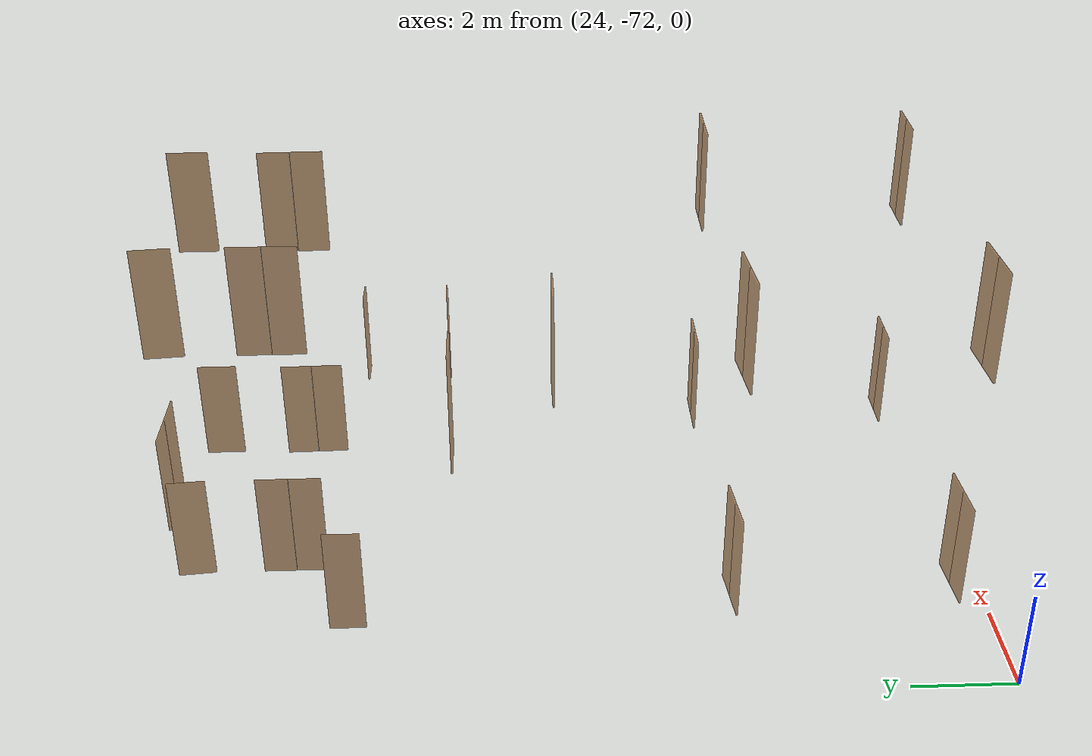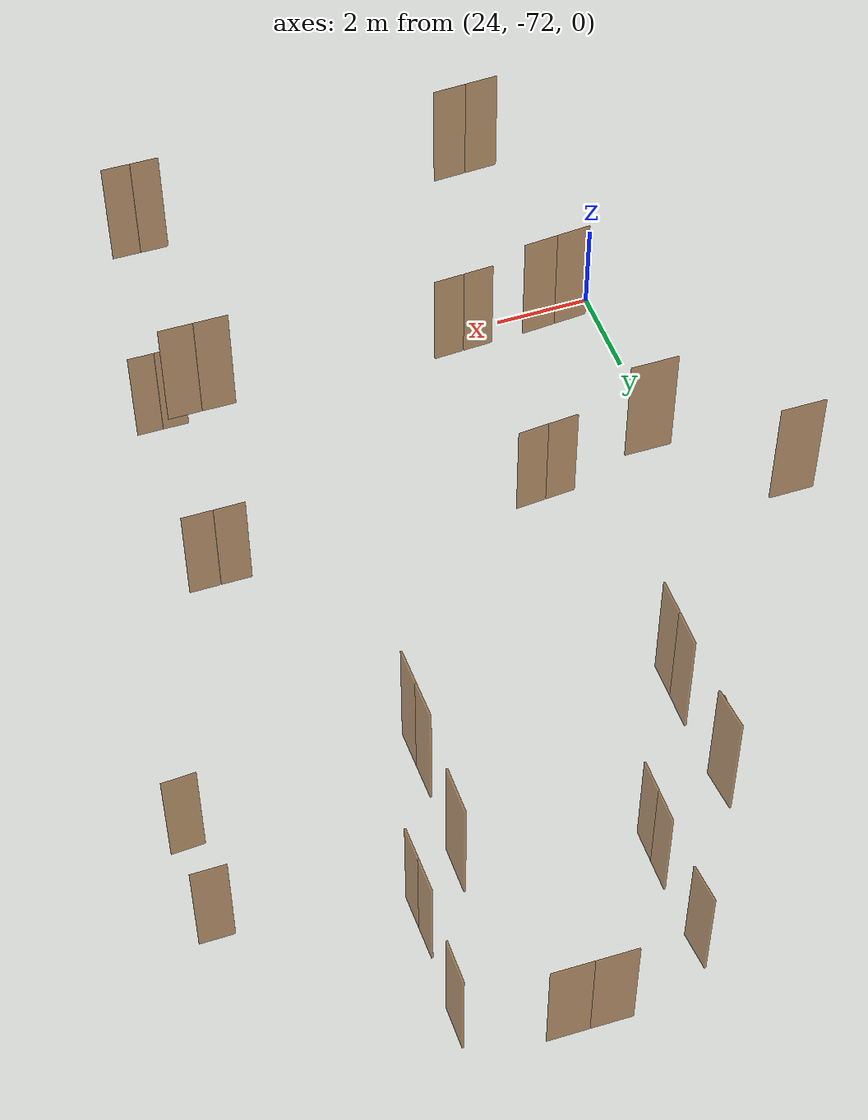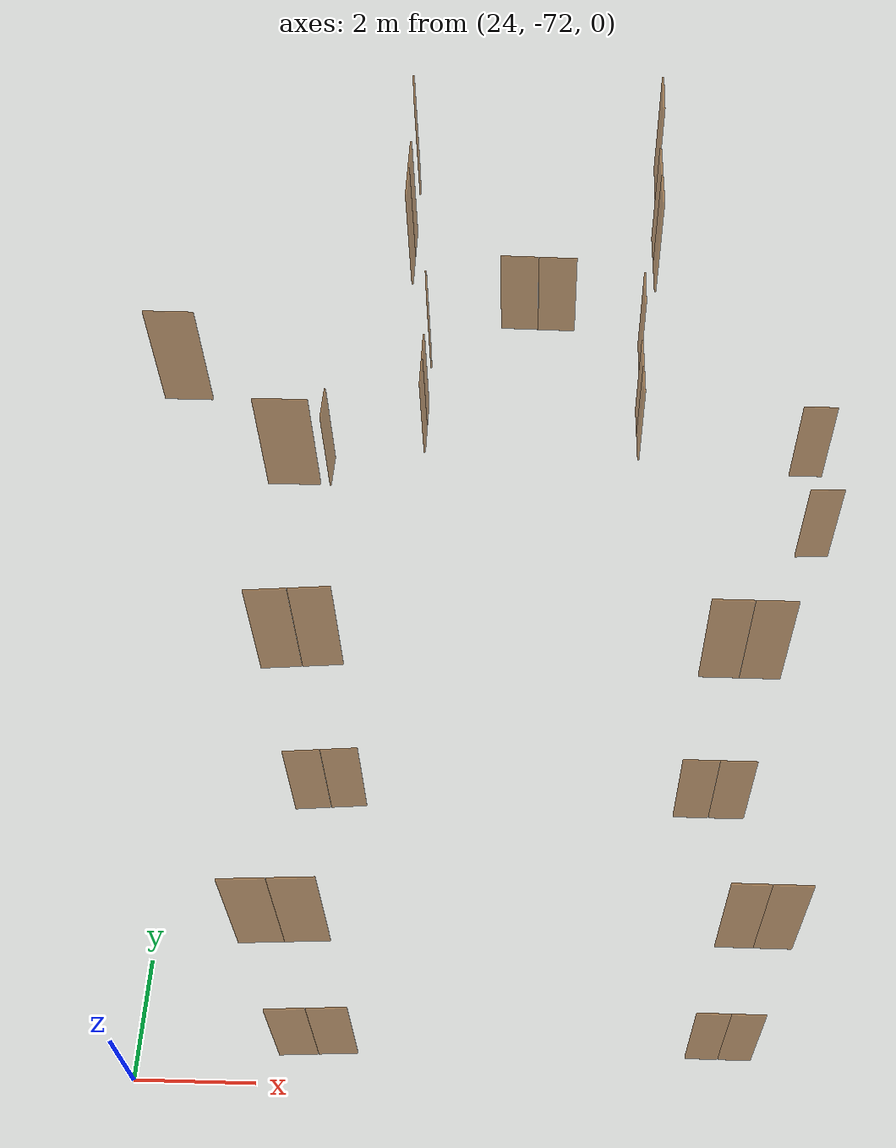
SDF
<sdf version="1.7">
 <world name="sim_world">
  <model name="null1">
   <pose>26.103566161447322 -59.618719863293634 0.0 0 0 1.54049188150451</pose>
   <link name="right">
    <pose>0 0 1.11 0 0 0</pose>
    <visual name="right_visual">
     <geometry><box><size>0.705529690599223 0.03 2.2</size></box></geometry>
     <material>
      <ambient>0.5 0.25 0 0.6</ambient>
      <diffuse>0.5 0.25 0 0.6</diffuse>
      <pbr><metal><metalness>0.0</metalness></metal></pbr>
     </material>
    </visual>
    <collision name="right_collision">
     <geometry><box><size>0.705529690599223 0.03 2.2</size></box></geometry>
     <surface><contact><collide_bitmask>0x02</collide_bitmask></contact></surface>
    </collision>
    <inertial>
     <mass>50.0</mass>
     <inertia><ixx>20.17041666666667</ixx><iyy>22.24071726798765</iyy><izz>2.077800601320981</izz></inertia>
    </inertial>
   </link>
   <joint name="right_joint" type="revolute">
    <parent>world</parent>
    <child>right</child>
    <axis><xyz>0 0 -1</xyz><limit><lower>0</lower><upper>1.57</upper></limit></axis>
    <pose>0.3577648452996115 0 0 0 0 0</pose>
   </joint>
   <plugin name="register_component" filename="libregister_component.so">
    <component name="Door">
     <v_max_door>0.5</v_max_door>
     <a_max_door>0.3</a_max_door>
     <a_nom_door>0.15</a_nom_door>
     <dx_min_door>0.01</dx_min_door>
     <f_max_door>500.0</f_max_door>
     <ros_interface>true</ros_interface>
     <door name="null1" type="SwingDoor" left_joint_name="empty_joint" right_joint_name="right_joint"/>
    </component>
   </plugin>
  </model>
  <model name="null2">
   <pose>27.940020431665385 -58.45546621345521 0.0 0 0 -1.5707963267948966</pose>
   <link name="right">
    <pose>0.3229764292878645 0 1.11 0 0 0</pose>
    <visual name="right_visual">
     <geometry><box><size>0.635952858575729 0.03 2.2</size></box></geometry>
     <material>
      <ambient>0.5 0.25 0 0.6</ambient>
      <diffuse>0.5 0.25 0 0.6</diffuse>
      <pbr><metal><metalness>0.0</metalness></metal></pbr>
     </material>
    </visual>
    <collision name="right_collision">
     <geometry><box><size>0.635952858575729 0.03 2.2</size></box></geometry>
     <surface><contact><collide_bitmask>0x02</collide_bitmask></contact></surface>
    </collision>
    <inertial>
     <mass>50.0</mass>
     <inertia><ixx>20.17041666666667</ixx><iyy>21.85181682637768</iyy><izz>1.6889001597110054</izz></inertia>
    </inertial>
   </link>
   <joint name="right_joint" type="revolute">
    <parent>world</parent>
    <child>right</child>
    <axis><xyz>0 0 -1</xyz><limit><lower>0</lower><upper>1.57</upper></limit></axis>
    <pose>0.3229764292878645 0 0 0 0 0</pose>
   </joint>
   <link name="left">
    <pose>-0.3229764292878645 0 1.11 0 0 0</pose>
    <visual name="left_visual">
     <geometry><box><size>0.635952858575729 0.03 2.2</size></box></geometry>
     <material>
      <ambient>0.5 0.25 0 0.6</ambient>
      <diffuse>0.5 0.25 0 0.6</diffuse>
      <pbr><metal><metalness>0.0</metalness></metal></pbr>
     </material>
    </visual>
    <collision name="left_collision">
     <geometry><box><size>0.635952858575729 0.03 2.2</size></box></geometry>
     <surface><contact><collide_bitmask>0x02</collide_bitmask></contact></surface>
    </collision>
    <inertial>
     <mass>50.0</mass>
     <inertia><ixx>20.17041666666667</ixx><iyy>21.85181682637768</iyy><izz>1.6889001597110054</izz></inertia>
    </inertial>
   </link>
   <joint name="left_joint" type="revolute">
    <parent>world</parent>
    <child>left</child>
    <axis><xyz>0 0 -1</xyz><limit><lower>-1.57</lower><upper>0</upper></limit></axis>
    <pose>-0.3229764292878645 0 0 0 0 0</pose>
   </joint>
   <plugin name="register_component" filename="libregister_component.so">
    <component name="Door">
     <v_max_door>0.5</v_max_door>
     <a_max_door>0.3</a_max_door>
     <a_nom_door>0.15</a_nom_door>
     <dx_min_door>0.01</dx_min_door>
     <f_max_door>500.0</f_max_door>
     <ros_interface>true</ros_interface>
     <door name="null2" type="DoubleSwingDoor" left_joint_name="left_joint" right_joint_name="right_joint"/>
    </component>
   </plugin>
  </model>
  <model name="null3">
   <pose>32.28503575541441 -58.48877214978272 0.0 0 0 1.5974592193470154</pose>
   <link name="right">
    <pose>0.33060354915400486 0 1.11 0 0 0</pose>
    <visual name="right_visual">
     <geometry><box><size>0.6512070983080097 0.03 2.2</size></box></geometry>
     <material>
      <ambient>0.5 0.25 0 0.6</ambient>
      <diffuse>0.5 0.25 0 0.6</diffuse>
      <pbr><metal><metalness>0.0</metalness></metal></pbr>
     </material>
    </visual>
    <collision name="right_collision">
     <geometry><box><size>0.6512070983080097 0.03 2.2</size></box></geometry>
     <surface><contact><collide_bitmask>0x02</collide_bitmask></contact></surface>
    </collision>
    <inertial>
     <mass>50.0</mass>
     <inertia><ixx>20.17041666666667</ixx><iyy>21.933627853694745</iyy><izz>1.7707111870280745</izz></inertia>
    </inertial>
   </link>
   <joint name="right_joint" type="revolute">
    <parent>world</parent>
    <child>right</child>
    <axis><xyz>0 0 -1</xyz><limit><lower>0</lower><upper>1.57</upper></limit></axis>
    <pose>0.33060354915400486 0 0 0 0 0</pose>
   </joint>
   <link name="left">
    <pose>-0.33060354915400486 0 1.11 0 0 0</pose>
    <visual name="left_visual">
     <geometry><box><size>0.6512070983080097 0.03 2.2</size></box></geometry>
     <material>
      <ambient>0.5 0.25 0 0.6</ambient>
      <diffuse>0.5 0.25 0 0.6</diffuse>
      <pbr><metal><metalness>0.0</metalness></metal></pbr>
     </material>
    </visual>
    <collision name="left_collision">
     <geometry><box><size>0.6512070983080097 0.03 2.2</size></box></geometry>
     <surface><contact><collide_bitmask>0x02</collide_bitmask></contact></surface>
    </collision>
    <inertial>
     <mass>50.0</mass>
     <inertia><ixx>20.17041666666667</ixx><iyy>21.933627853694745</iyy><izz>1.7707111870280745</izz></inertia>
    </inertial>
   </link>
   <joint name="left_joint" type="revolute">
    <parent>world</parent>
    <child>left</child>
    <axis><xyz>0 0 -1</xyz><limit><lower>-1.57</lower><upper>0</upper></limit></axis>
    <pose>-0.33060354915400486 0 0 0 0 0</pose>
   </joint>
   <plugin name="register_component" filename="libregister_component.so">
    <component name="Door">
     <v_max_door>0.5</v_max_door>
     <a_max_door>0.3</a_max_door>
     <a_nom_door>0.15</a_nom_door>
     <dx_min_door>0.01</dx_min_door>
     <f_max_door>500.0</f_max_door>
     <ros_interface>true</ros_interface>
     <door name="null3" type="DoubleSwingDoor" left_joint_name="left_joint" right_joint_name="right_joint"/>
    </component>
   </plugin>
  </model>
  <model name="null4">
   <pose>26.764426055945634 -67.0479209851778 0.0 0 0 -3.0586886826109057</pose>
   <link name="right">
    <pose>0.31905180220893986 0 1.11 0 0 0</pose>
    <visual name="right_visual">
     <geometry><box><size>0.6281036044178797 0.03 2.2</size></box></geometry>
     <material>
      <ambient>0.5 0.25 0 0.6</ambient>
      <diffuse>0.5 0.25 0 0.6</diffuse>
      <pbr><metal><metalness>0.0</metalness></metal></pbr>
     </material>
    </visual>
    <collision name="right_collision">
     <geometry><box><size>0.6281036044178797 0.03 2.2</size></box></geometry>
     <surface><contact><collide_bitmask>0x02</collide_bitmask></contact></surface>
    </collision>
    <inertial>
     <mass>50.0</mass>
     <inertia><ixx>20.17041666666667</ixx><iyy>21.810475574511386</iyy><izz>1.6475589078447181</izz></inertia>
    </inertial>
   </link>
   <joint name="right_joint" type="revolute">
    <parent>world</parent>
    <child>right</child>
    <axis><xyz>0 0 -1</xyz><limit><lower>0</lower><upper>1.57</upper></limit></axis>
    <pose>0.31905180220893986 0 0 0 0 0</pose>
   </joint>
   <link name="left">
    <pose>-0.31905180220893986 0 1.11 0 0 0</pose>
    <visual name="left_visual">
     <geometry><box><size>0.6281036044178797 0.03 2.2</size></box></geometry>
     <material>
      <ambient>0.5 0.25 0 0.6</ambient>
      <diffuse>0.5 0.25 0 0.6</diffuse>
      <pbr><metal><metalness>0.0</metalness></metal></pbr>
     </material>
    </visual>
    <collision name="left_collision">
     <geometry><box><size>0.6281036044178797 0.03 2.2</size></box></geometry>
     <surface><contact><collide_bitmask>0x02</collide_bitmask></contact></surface>
    </collision>
    <inertial>
     <mass>50.0</mass>
     <inertia><ixx>20.17041666666667</ixx><iyy>21.810475574511386</iyy><izz>1.6475589078447181</izz></inertia>
    </inertial>
   </link>
   <joint name="left_joint" type="revolute">
    <parent>world</parent>
    <child>left</child>
    <axis><xyz>0 0 -1</xyz><limit><lower>-1.57</lower><upper>0</upper></limit></axis>
    <pose>-0.31905180220893986 0 0 0 0 0</pose>
   </joint>
   <plugin name="register_component" filename="libregister_component.so">
    <component name="Door">
     <v_max_door>0.5</v_max_door>
     <a_max_door>0.3</a_max_door>
     <a_nom_door>0.15</a_nom_door>
     <dx_min_door>0.01</dx_min_door>
     <f_max_door>500.0</f_max_door>
     <ros_interface>true</ros_interface>
     <door name="null4" type="DoubleSwingDoor" left_joint_name="left_joint" right_joint_name="right_joint"/>
    </component>
   </plugin>
  </model>
  <model name="null5">
   <pose>26.96604266503215 -71.47027619896731 0.0 0 0 0.05497568760649144</pose>
   <link name="right">
    <pose>0.32361258483140937 0 1.11 0 0 0</pose>
    <visual name="right_visual">
     <geometry><box><size>0.6372251696628187 0.03 2.2</size></box></geometry>
     <material>
      <ambient>0.5 0.25 0 0.6</ambient>
      <diffuse>0.5 0.25 0 0.6</diffuse>
      <pbr><metal><metalness>0.0</metalness></metal></pbr>
     </material>
    </visual>
    <collision name="right_collision">
     <geometry><box><size>0.6372251696628187 0.03 2.2</size></box></geometry>
     <surface><contact><collide_bitmask>0x02</collide_bitmask></contact></surface>
    </collision>
    <inertial>
     <mass>50.0</mass>
     <inertia><ixx>20.17041666666667</ixx><iyy>21.85856632021587</iyy><izz>1.6956496535492005</izz></inertia>
    </inertial>
   </link>
   <joint name="right_joint" type="revolute">
    <parent>world</parent>
    <child>right</child>
    <axis><xyz>0 0 -1</xyz><limit><lower>0</lower><upper>1.57</upper></limit></axis>
    <pose>0.32361258483140937 0 0 0 0 0</pose>
   </joint>
   <link name="left">
    <pose>-0.32361258483140937 0 1.11 0 0 0</pose>
    <visual name="left_visual">
     <geometry><box><size>0.6372251696628187 0.03 2.2</size></box></geometry>
     <material>
      <ambient>0.5 0.25 0 0.6</ambient>
      <diffuse>0.5 0.25 0 0.6</diffuse>
      <pbr><metal><metalness>0.0</metalness></metal></pbr>
     </material>
    </visual>
    <collision name="left_collision">
     <geometry><box><size>0.6372251696628187 0.03 2.2</size></box></geometry>
     <surface><contact><collide_bitmask>0x02</collide_bitmask></contact></surface>
    </collision>
    <inertial>
     <mass>50.0</mass>
     <inertia><ixx>20.17041666666667</ixx><iyy>21.85856632021587</iyy><izz>1.6956496535492005</izz></inertia>
    </inertial>
   </link>
   <joint name="left_joint" type="revolute">
    <parent>world</parent>
    <child>left</child>
    <axis><xyz>0 0 -1</xyz><limit><lower>-1.57</lower><upper>0</upper></limit></axis>
    <pose>-0.32361258483140937 0 0 0 0 0</pose>
   </joint>
   <plugin name="register_component" filename="libregister_component.so">
    <component name="Door">
     <v_max_door>0.5</v_max_door>
     <a_max_door>0.3</a_max_door>
     <a_nom_door>0.15</a_nom_door>
     <dx_min_door>0.01</dx_min_door>
     <f_max_door>500.0</f_max_door>
     <ros_interface>true</ros_interface>
     <door name="null5" type="DoubleSwingDoor" left_joint_name="left_joint" right_joint_name="right_joint"/>
    </component>
   </plugin>
  </model>
  <model name="null6">
   <pose>33.50608046361308 -71.34975779189425 0.0 0 0 0.0</pose>
   <link name="right">
    <pose>0.27047225008358566 0 1.11 0 0 0</pose>
    <visual name="right_visual">
     <geometry><box><size>0.5309445001671713 0.03 2.2</size></box></geometry>
     <material>
      <ambient>0.5 0.25 0 0.6</ambient>
      <diffuse>0.5 0.25 0 0.6</diffuse>
      <pbr><metal><metalness>0.0</metalness></metal></pbr>
     </material>
    </visual>
    <collision name="right_collision">
     <geometry><box><size>0.5309445001671713 0.03 2.2</size></box></geometry>
     <surface><contact><collide_bitmask>0x02</collide_bitmask></contact></surface>
    </collision>
    <inertial>
     <mass>50.0</mass>
     <inertia><ixx>20.17041666666667</ixx><iyy>21.3412585927407</iyy><izz>1.1783419260740309</izz></inertia>
    </inertial>
   </link>
   <joint name="right_joint" type="revolute">
    <parent>world</parent>
    <child>right</child>
    <axis><xyz>0 0 -1</xyz><limit><lower>0</lower><upper>1.57</upper></limit></axis>
    <pose>0.27047225008358566 0 0 0 0 0</pose>
   </joint>
   <link name="left">
    <pose>-0.27047225008358566 0 1.11 0 0 0</pose>
    <visual name="left_visual">
     <geometry><box><size>0.5309445001671713 0.03 2.2</size></box></geometry>
     <material>
      <ambient>0.5 0.25 0 0.6</ambient>
      <diffuse>0.5 0.25 0 0.6</diffuse>
      <pbr><metal><metalness>0.0</metalness></metal></pbr>
     </material>
    </visual>
    <collision name="left_collision">
     <geometry><box><size>0.5309445001671713 0.03 2.2</size></box></geometry>
     <surface><contact><collide_bitmask>0x02</collide_bitmask></contact></surface>
    </collision>
    <inertial>
     <mass>50.0</mass>
     <inertia><ixx>20.17041666666667</ixx><iyy>21.3412585927407</iyy><izz>1.1783419260740309</izz></inertia>
    </inertial>
   </link>
   <joint name="left_joint" type="revolute">
    <parent>world</parent>
    <child>left</child>
    <axis><xyz>0 0 -1</xyz><limit><lower>-1.57</lower><upper>0</upper></limit></axis>
    <pose>-0.27047225008358566 0 0 0 0 0</pose>
   </joint>
   <plugin name="register_component" filename="libregister_component.so">
    <component name="Door">
     <v_max_door>0.5</v_max_door>
     <a_max_door>0.3</a_max_door>
     <a_nom_door>0.15</a_nom_door>
     <dx_min_door>0.01</dx_min_door>
     <f_max_door>500.0</f_max_door>
     <ros_interface>true</ros_interface>
     <door name="null6" type="DoubleSwingDoor" left_joint_name="left_joint" right_joint_name="right_joint"/>
    </component>
   </plugin>
  </model>
  <model name="null7">
   <pose>33.485339630001135 -67.03628143690335 0.0 0 0 3.141592653589793</pose>
   <link name="right">
    <pose>0.31595764144284644 0 1.11 0 0 0</pose>
    <visual name="right_visual">
     <geometry><box><size>0.6219152828856929 0.03 2.2</size></box></geometry>
     <material>
      <ambient>0.5 0.25 0 0.6</ambient>
      <diffuse>0.5 0.25 0 0.6</diffuse>
      <pbr><metal><metalness>0.0</metalness></metal></pbr>
     </material>
    </visual>
    <collision name="right_collision">
     <geometry><box><size>0.6219152828856929 0.03 2.2</size></box></geometry>
     <surface><contact><collide_bitmask>0x02</collide_bitmask></contact></surface>
    </collision>
    <inertial>
     <mass>50.0</mass>
     <inertia><ixx>20.17041666666667</ixx><iyy>21.77824424619497</iyy><izz>1.6153275795282978</izz></inertia>
    </inertial>
   </link>
   <joint name="right_joint" type="revolute">
    <parent>world</parent>
    <child>right</child>
    <axis><xyz>0 0 -1</xyz><limit><lower>0</lower><upper>1.57</upper></limit></axis>
    <pose>0.31595764144284644 0 0 0 0 0</pose>
   </joint>
   <link name="left">
    <pose>-0.31595764144284644 0 1.11 0 0 0</pose>
    <visual name="left_visual">
     <geometry><box><size>0.6219152828856929 0.03 2.2</size></box></geometry>
     <material>
      <ambient>0.5 0.25 0 0.6</ambient>
      <diffuse>0.5 0.25 0 0.6</diffuse>
      <pbr><metal><metalness>0.0</metalness></metal></pbr>
     </material>
    </visual>
    <collision name="left_collision">
     <geometry><box><size>0.6219152828856929 0.03 2.2</size></box></geometry>
     <surface><contact><collide_bitmask>0x02</collide_bitmask></contact></surface>
    </collision>
    <inertial>
     <mass>50.0</mass>
     <inertia><ixx>20.17041666666667</ixx><iyy>21.77824424619497</iyy><izz>1.6153275795282978</izz></inertia>
    </inertial>
   </link>
   <joint name="left_joint" type="revolute">
    <parent>world</parent>
    <child>left</child>
    <axis><xyz>0 0 -1</xyz><limit><lower>-1.57</lower><upper>0</upper></limit></axis>
    <pose>-0.31595764144284644 0 0 0 0 0</pose>
   </joint>
   <plugin name="register_component" filename="libregister_component.so">
    <component name="Door">
     <v_max_door>0.5</v_max_door>
     <a_max_door>0.3</a_max_door>
     <a_nom_door>0.15</a_nom_door>
     <dx_min_door>0.01</dx_min_door>
     <f_max_door>500.0</f_max_door>
     <ros_interface>true</ros_interface>
     <door name="null7" type="DoubleSwingDoor" left_joint_name="left_joint" right_joint_name="right_joint"/>
    </component>
   </plugin>
  </model>
  <model name="null8">
   <pose>35.676940358111395 -61.37927866934139 0.0 0 0 0.057203980331031516</pose>
   <link name="right">
    <pose>0 0 1.11 0 0 0</pose>
    <visual name="right_visual">
     <geometry><box><size>0.6458885815082936 0.03 2.2</size></box></geometry>
     <material>
      <ambient>0.5 0.25 0 0.6</ambient>
      <diffuse>0.5 0.25 0 0.6</diffuse>
      <pbr><metal><metalness>0.0</metalness></metal></pbr>
     </material>
    </visual>
    <collision name="right_collision">
     <geometry><box><size>0.6458885815082936 0.03 2.2</size></box></geometry>
     <surface><contact><collide_bitmask>0x02</collide_bitmask></contact></surface>
    </collision>
    <inertial>
     <mass>50.0</mass>
     <inertia><ixx>20.17041666666667</ixx><iyy>21.904883582178318</iyy><izz>1.7419669155116488</izz></inertia>
    </inertial>
   </link>
   <joint name="right_joint" type="revolute">
    <parent>world</parent>
    <child>right</child>
    <axis><xyz>0 0 -1</xyz><limit><lower>0</lower><upper>1.57</upper></limit></axis>
    <pose>0.3279442907541468 0 0 0 0 0</pose>
   </joint>
   <plugin name="register_component" filename="libregister_component.so">
    <component name="Door">
     <v_max_door>0.5</v_max_door>
     <a_max_door>0.3</a_max_door>
     <a_nom_door>0.15</a_nom_door>
     <dx_min_door>0.01</dx_min_door>
     <f_max_door>500.0</f_max_door>
     <ros_interface>true</ros_interface>
     <door name="null8" type="SwingDoor" left_joint_name="empty_joint" right_joint_name="right_joint"/>
    </component>
   </plugin>
  </model>
  <model name="null9">
   <pose>35.683727757346134 -59.42383455923329 0.0 0 0 3.1399579147182095</pose>
   <link name="right">
    <pose>0 0 1.11 0 0 0</pose>
    <visual name="right_visual">
     <geometry><box><size>0.6591206607767238 0.03 2.2</size></box></geometry>
     <material>
      <ambient>0.5 0.25 0 0.6</ambient>
      <diffuse>0.5 0.25 0 0.6</diffuse>
      <pbr><metal><metalness>0.0</metalness></metal></pbr>
     </material>
    </visual>
    <collision name="right_collision">
     <geometry><box><size>0.6591206607767238 0.03 2.2</size></box></geometry>
     <surface><contact><collide_bitmask>0x02</collide_bitmask></contact></surface>
    </collision>
    <inertial>
     <mass>50.0</mass>
     <inertia><ixx>20.17041666666667</ixx><iyy>21.976833522761442</iyy><izz>1.8139168560947712</izz></inertia>
    </inertial>
   </link>
   <joint name="right_joint" type="revolute">
    <parent>world</parent>
    <child>right</child>
    <axis><xyz>0 0 -1</xyz><limit><lower>0</lower><upper>1.57</upper></limit></axis>
    <pose>0.3345603303883619 0 0 0 0 0</pose>
   </joint>
   <plugin name="register_component" filename="libregister_component.so">
    <component name="Door">
     <v_max_door>0.5</v_max_door>
     <a_max_door>0.3</a_max_door>
     <a_nom_door>0.15</a_nom_door>
     <dx_min_door>0.01</dx_min_door>
     <f_max_door>500.0</f_max_door>
     <ros_interface>true</ros_interface>
     <door name="null9" type="SwingDoor" left_joint_name="empty_joint" right_joint_name="right_joint"/>
    </component>
   </plugin>
  </model>
  <model name="null10">
   <pose>32.34012026821206 -56.42946961254137 0.0 0 0 -1.5614149819259933</pose>
   <link name="right">
    <pose>0 0 1.11 0 0 0</pose>
    <visual name="right_visual">
     <geometry><box><size>0.824129539505242 0.03 2.2</size></box></geometry>
     <material>
      <ambient>0.5 0.25 0 0.6</ambient>
      <diffuse>0.5 0.25 0 0.6</diffuse>
      <pbr><metal><metalness>0.0</metalness></metal></pbr>
     </material>
    </visual>
    <collision name="right_collision">
     <geometry><box><size>0.824129539505242 0.03 2.2</size></box></geometry>
     <surface><contact><collide_bitmask>0x02</collide_bitmask></contact></surface>
    </collision>
    <inertial>
     <mass>50.0</mass>
     <inertia><ixx>20.17041666666667</ixx><iyy>22.996622907854682</iyy><izz>2.83370624118801</izz></inertia>
    </inertial>
   </link>
   <joint name="right_joint" type="revolute">
    <parent>world</parent>
    <child>right</child>
    <axis><xyz>0 0 -1</xyz><limit><lower>0</lower><upper>1.57</upper></limit></axis>
    <pose>0.417064769752621 0 0 0 0 0</pose>
   </joint>
   <plugin name="register_component" filename="libregister_component.so">
    <component name="Door">
     <v_max_door>0.5</v_max_door>
     <a_max_door>0.3</a_max_door>
     <a_nom_door>0.15</a_nom_door>
     <dx_min_door>0.01</dx_min_door>
     <f_max_door>500.0</f_max_door>
     <ros_interface>true</ros_interface>
     <door name="null10" type="SwingDoor" left_joint_name="empty_joint" right_joint_name="right_joint"/>
    </component>
   </plugin>
  </model>
  <model name="null11">
   <pose>27.908453415802985 -56.48539553846729 0.0 0 0 1.6672749065398973</pose>
   <link name="right">
    <pose>0 0 1.11 0 0 0</pose>
    <visual name="right_visual">
     <geometry><box><size>0.7397359122782493 0.03 2.2</size></box></geometry>
     <material>
      <ambient>0.5 0.25 0 0.6</ambient>
      <diffuse>0.5 0.25 0 0.6</diffuse>
      <pbr><metal><metalness>0.0</metalness></metal></pbr>
     </material>
    </visual>
    <collision name="right_collision">
     <geometry><box><size>0.7397359122782493 0.03 2.2</size></box></geometry>
     <surface><contact><collide_bitmask>0x02</collide_bitmask></contact></surface>
    </collision>
    <inertial>
     <mass>50.0</mass>
     <inertia><ixx>20.17041666666667</ixx><iyy>22.446705082975562</iyy><izz>2.283788416308891</izz></inertia>
    </inertial>
   </link>
   <joint name="right_joint" type="revolute">
    <parent>world</parent>
    <child>right</child>
    <axis><xyz>0 0 -1</xyz><limit><lower>0</lower><upper>1.57</upper></limit></axis>
    <pose>0.37486795613912466 0 0 0 0 0</pose>
   </joint>
   <plugin name="register_component" filename="libregister_component.so">
    <component name="Door">
     <v_max_door>0.5</v_max_door>
     <a_max_door>0.3</a_max_door>
     <a_nom_door>0.15</a_nom_door>
     <dx_min_door>0.01</dx_min_door>
     <f_max_door>500.0</f_max_door>
     <ros_interface>true</ros_interface>
     <door name="null11" type="SwingDoor" left_joint_name="empty_joint" right_joint_name="right_joint"/>
    </component>
   </plugin>
  </model>
  <model name="null42">
   <pose>30.1678720420521 -55.68129908243252 0.0 0 0 -0.017376294322296863</pose>
   <link name="right">
    <pose>0.3954747903138614 0 1.11 0 0 0</pose>
    <visual name="right_visual">
     <geometry><box><size>0.7809495806277228 0.03 2.2</size></box></geometry>
     <material>
      <ambient>0.5 0.25 0 0.6</ambient>
      <diffuse>0.5 0.25 0 0.6</diffuse>
      <pbr><metal><metalness>0.0</metalness></metal></pbr>
     </material>
    </visual>
    <collision name="right_collision">
     <geometry><box><size>0.7809495806277228 0.03 2.2</size></box></geometry>
     <surface><contact><collide_bitmask>0x02</collide_bitmask></contact></surface>
    </collision>
    <inertial>
     <mass>50.0</mass>
     <inertia><ixx>20.17041666666667</ixx><iyy>22.70784269784424</iyy><izz>2.5449260311775674</izz></inertia>
    </inertial>
   </link>
   <joint name="right_joint" type="revolute">
    <parent>world</parent>
    <child>right</child>
    <axis><xyz>0 0 -1</xyz><limit><lower>0</lower><upper>1.57</upper></limit></axis>
    <pose>0.3954747903138614 0 0 0 0 0</pose>
   </joint>
   <link name="left">
    <pose>-0.3954747903138614 0 1.11 0 0 0</pose>
    <visual name="left_visual">
     <geometry><box><size>0.7809495806277228 0.03 2.2</size></box></geometry>
     <material>
      <ambient>0.5 0.25 0 0.6</ambient>
      <diffuse>0.5 0.25 0 0.6</diffuse>
      <pbr><metal><metalness>0.0</metalness></metal></pbr>
     </material>
    </visual>
    <collision name="left_collision">
     <geometry><box><size>0.7809495806277228 0.03 2.2</size></box></geometry>
     <surface><contact><collide_bitmask>0x02</collide_bitmask></contact></surface>
    </collision>
    <inertial>
     <mass>50.0</mass>
     <inertia><ixx>20.17041666666667</ixx><iyy>22.70784269784424</iyy><izz>2.5449260311775674</izz></inertia>
    </inertial>
   </link>
   <joint name="left_joint" type="revolute">
    <parent>world</parent>
    <child>left</child>
    <axis><xyz>0 0 -1</xyz><limit><lower>-1.57</lower><upper>0</upper></limit></axis>
    <pose>-0.3954747903138614 0 0 0 0 0</pose>
   </joint>
   <plugin name="register_component" filename="libregister_component.so">
    <component name="Door">
     <v_max_door>0.5</v_max_door>
     <a_max_door>0.3</a_max_door>
     <a_nom_door>0.15</a_nom_door>
     <dx_min_door>0.01</dx_min_door>
     <f_max_door>500.0</f_max_door>
     <ros_interface>true</ros_interface>
     <door name="null42" type="DoubleSwingDoor" left_joint_name="left_joint" right_joint_name="right_joint"/>
    </component>
   </plugin>
  </model>
  <model name="anull2">
   <pose>27.942064443301362 -58.42850383275716 5.0 0 0 -1.5707954649760567</pose>
   <link name="right">
    <pose>0.322977821025682 0 1.11 0 0 0</pose>
    <visual name="right_visual">
     <geometry><box><size>0.635955642051364 0.03 2.2</size></box></geometry>
     <material>
      <ambient>0.5 0.25 0 0.6</ambient>
      <diffuse>0.5 0.25 0 0.6</diffuse>
      <pbr><metal><metalness>0.0</metalness></metal></pbr>
     </material>
    </visual>
    <collision name="right_collision">
     <geometry><box><size>0.635955642051364 0.03 2.2</size></box></geometry>
     <surface><contact><collide_bitmask>0x02</collide_bitmask></contact></surface>
    </collision>
    <inertial>
     <mass>50.0</mass>
     <inertia><ixx>20.17041666666667</ixx><iyy>21.851831577737347</iyy><izz>1.6889149110706778</izz></inertia>
    </inertial>
   </link>
   <joint name="right_joint" type="revolute">
    <parent>world</parent>
    <child>right</child>
    <axis><xyz>0 0 -1</xyz><limit><lower>0</lower><upper>1.57</upper></limit></axis>
    <pose>0.322977821025682 0 0 0 0 0</pose>
   </joint>
   <link name="left">
    <pose>-0.322977821025682 0 1.11 0 0 0</pose>
    <visual name="left_visual">
     <geometry><box><size>0.635955642051364 0.03 2.2</size></box></geometry>
     <material>
      <ambient>0.5 0.25 0 0.6</ambient>
      <diffuse>0.5 0.25 0 0.6</diffuse>
      <pbr><metal><metalness>0.0</metalness></metal></pbr>
     </material>
    </visual>
    <collision name="left_collision">
     <geometry><box><size>0.635955642051364 0.03 2.2</size></box></geometry>
     <surface><contact><collide_bitmask>0x02</collide_bitmask></contact></surface>
    </collision>
    <inertial>
     <mass>50.0</mass>
     <inertia><ixx>20.17041666666667</ixx><iyy>21.851831577737347</iyy><izz>1.6889149110706778</izz></inertia>
    </inertial>
   </link>
   <joint name="left_joint" type="revolute">
    <parent>world</parent>
    <child>left</child>
    <axis><xyz>0 0 -1</xyz><limit><lower>-1.57</lower><upper>0</upper></limit></axis>
    <pose>-0.322977821025682 0 0 0 0 0</pose>
   </joint>
   <plugin name="register_component" filename="libregister_component.so">
    <component name="Door">
     <v_max_door>0.5</v_max_door>
     <a_max_door>0.3</a_max_door>
     <a_nom_door>0.15</a_nom_door>
     <dx_min_door>0.01</dx_min_door>
     <f_max_door>500.0</f_max_door>
     <ros_interface>true</ros_interface>
     <door name="anull2" type="DoubleSwingDoor" left_joint_name="left_joint" right_joint_name="right_joint"/>
    </component>
   </plugin>
  </model>
  <model name="anull3">
   <pose>32.28709851885927 -58.461806167971076 5.0 0 0 1.5974600811658597</pose>
   <link name="right">
    <pose>0.3306049737578438 0 1.11 0 0 0</pose>
    <visual name="right_visual">
     <geometry><box><size>0.6512099475156876 0.03 2.2</size></box></geometry>
     <material>
      <ambient>0.5 0.25 0 0.6</ambient>
      <diffuse>0.5 0.25 0 0.6</diffuse>
      <pbr><metal><metalness>0.0</metalness></metal></pbr>
     </material>
    </visual>
    <collision name="right_collision">
     <geometry><box><size>0.6512099475156876 0.03 2.2</size></box></geometry>
     <surface><contact><collide_bitmask>0x02</collide_bitmask></contact></surface>
    </collision>
    <inertial>
     <mass>50.0</mass>
     <inertia><ixx>20.17041666666667</ixx><iyy>21.93364331559744</iyy><izz>1.7707266489307694</izz></inertia>
    </inertial>
   </link>
   <joint name="right_joint" type="revolute">
    <parent>world</parent>
    <child>right</child>
    <axis><xyz>0 0 -1</xyz><limit><lower>0</lower><upper>1.57</upper></limit></axis>
    <pose>0.3306049737578438 0 0 0 0 0</pose>
   </joint>
   <link name="left">
    <pose>-0.3306049737578438 0 1.11 0 0 0</pose>
    <visual name="left_visual">
     <geometry><box><size>0.6512099475156876 0.03 2.2</size></box></geometry>
     <material>
      <ambient>0.5 0.25 0 0.6</ambient>
      <diffuse>0.5 0.25 0 0.6</diffuse>
      <pbr><metal><metalness>0.0</metalness></metal></pbr>
     </material>
    </visual>
    <collision name="left_collision">
     <geometry><box><size>0.6512099475156876 0.03 2.2</size></box></geometry>
     <surface><contact><collide_bitmask>0x02</collide_bitmask></contact></surface>
    </collision>
    <inertial>
     <mass>50.0</mass>
     <inertia><ixx>20.17041666666667</ixx><iyy>21.93364331559744</iyy><izz>1.7707266489307694</izz></inertia>
    </inertial>
   </link>
   <joint name="left_joint" type="revolute">
    <parent>world</parent>
    <child>left</child>
    <axis><xyz>0 0 -1</xyz><limit><lower>-1.57</lower><upper>0</upper></limit></axis>
    <pose>-0.3306049737578438 0 0 0 0 0</pose>
   </joint>
   <plugin name="register_component" filename="libregister_component.so">
    <component name="Door">
     <v_max_door>0.5</v_max_door>
     <a_max_door>0.3</a_max_door>
     <a_nom_door>0.15</a_nom_door>
     <dx_min_door>0.01</dx_min_door>
     <f_max_door>500.0</f_max_door>
     <ros_interface>true</ros_interface>
     <door name="anull3" type="DoubleSwingDoor" left_joint_name="left_joint" right_joint_name="right_joint"/>
    </component>
   </plugin>
  </model>
  <model name="anull4">
   <pose>26.76647240699932 -67.02099664337945 5.0 0 0 -3.0586878207920676</pose>
   <link name="right">
    <pose>0.3190531770351455 0 1.11 0 0 0</pose>
    <visual name="right_visual">
     <geometry><box><size>0.628106354070291 0.03 2.2</size></box></geometry>
     <material>
      <ambient>0.5 0.25 0 0.6</ambient>
      <diffuse>0.5 0.25 0 0.6</diffuse>
      <pbr><metal><metalness>0.0</metalness></metal></pbr>
     </material>
    </visual>
    <collision name="right_collision">
     <geometry><box><size>0.628106354070291 0.03 2.2</size></box></geometry>
     <surface><contact><collide_bitmask>0x02</collide_bitmask></contact></surface>
    </collision>
    <inertial>
     <mass>50.0</mass>
     <inertia><ixx>20.17041666666667</ixx><iyy>21.81048996676448</iyy><izz>1.6475733000978077</izz></inertia>
    </inertial>
   </link>
   <joint name="right_joint" type="revolute">
    <parent>world</parent>
    <child>right</child>
    <axis><xyz>0 0 -1</xyz><limit><lower>0</lower><upper>1.57</upper></limit></axis>
    <pose>0.3190531770351455 0 0 0 0 0</pose>
   </joint>
   <link name="left">
    <pose>-0.3190531770351455 0 1.11 0 0 0</pose>
    <visual name="left_visual">
     <geometry><box><size>0.628106354070291 0.03 2.2</size></box></geometry>
     <material>
      <ambient>0.5 0.25 0 0.6</ambient>
      <diffuse>0.5 0.25 0 0.6</diffuse>
      <pbr><metal><metalness>0.0</metalness></metal></pbr>
     </material>
    </visual>
    <collision name="left_collision">
     <geometry><box><size>0.628106354070291 0.03 2.2</size></box></geometry>
     <surface><contact><collide_bitmask>0x02</collide_bitmask></contact></surface>
    </collision>
    <inertial>
     <mass>50.0</mass>
     <inertia><ixx>20.17041666666667</ixx><iyy>21.81048996676448</iyy><izz>1.6475733000978077</izz></inertia>
    </inertial>
   </link>
   <joint name="left_joint" type="revolute">
    <parent>world</parent>
    <child>left</child>
    <axis><xyz>0 0 -1</xyz><limit><lower>-1.57</lower><upper>0</upper></limit></axis>
    <pose>-0.3190531770351455 0 0 0 0 0</pose>
   </joint>
   <plugin name="register_component" filename="libregister_component.so">
    <component name="Door">
     <v_max_door>0.5</v_max_door>
     <a_max_door>0.3</a_max_door>
     <a_nom_door>0.15</a_nom_door>
     <dx_min_door>0.01</dx_min_door>
     <f_max_door>500.0</f_max_door>
     <ros_interface>true</ros_interface>
     <door name="anull4" type="DoubleSwingDoor" left_joint_name="left_joint" right_joint_name="right_joint"/>
    </component>
   </plugin>
  </model>
  <model name="anull5">
   <pose>26.96809369615741 -71.4433707397816 5.0 0 0 0.05497654942534097</pose>
   <link name="right">
    <pose>0.32361397931048386 0 1.11 0 0 0</pose>
    <visual name="right_visual">
     <geometry><box><size>0.6372279586209677 0.03 2.2</size></box></geometry>
     <material>
      <ambient>0.5 0.25 0 0.6</ambient>
      <diffuse>0.5 0.25 0 0.6</diffuse>
      <pbr><metal><metalness>0.0</metalness></metal></pbr>
     </material>
    </visual>
    <collision name="right_collision">
     <geometry><box><size>0.6372279586209677 0.03 2.2</size></box></geometry>
     <surface><contact><collide_bitmask>0x02</collide_bitmask></contact></surface>
    </collision>
    <inertial>
     <mass>50.0</mass>
     <inertia><ixx>20.17041666666667</ixx><iyy>21.858581130201028</iyy><izz>1.6956644635343572</izz></inertia>
    </inertial>
   </link>
   <joint name="right_joint" type="revolute">
    <parent>world</parent>
    <child>right</child>
    <axis><xyz>0 0 -1</xyz><limit><lower>0</lower><upper>1.57</upper></limit></axis>
    <pose>0.32361397931048386 0 0 0 0 0</pose>
   </joint>
   <link name="left">
    <pose>-0.32361397931048386 0 1.11 0 0 0</pose>
    <visual name="left_visual">
     <geometry><box><size>0.6372279586209677 0.03 2.2</size></box></geometry>
     <material>
      <ambient>0.5 0.25 0 0.6</ambient>
      <diffuse>0.5 0.25 0 0.6</diffuse>
      <pbr><metal><metalness>0.0</metalness></metal></pbr>
     </material>
    </visual>
    <collision name="left_collision">
     <geometry><box><size>0.6372279586209677 0.03 2.2</size></box></geometry>
     <surface><contact><collide_bitmask>0x02</collide_bitmask></contact></surface>
    </collision>
    <inertial>
     <mass>50.0</mass>
     <inertia><ixx>20.17041666666667</ixx><iyy>21.858581130201028</iyy><izz>1.6956644635343572</izz></inertia>
    </inertial>
   </link>
   <joint name="left_joint" type="revolute">
    <parent>world</parent>
    <child>left</child>
    <axis><xyz>0 0 -1</xyz><limit><lower>-1.57</lower><upper>0</upper></limit></axis>
    <pose>-0.32361397931048386 0 0 0 0 0</pose>
   </joint>
   <plugin name="register_component" filename="libregister_component.so">
    <component name="Door">
     <v_max_door>0.5</v_max_door>
     <a_max_door>0.3</a_max_door>
     <a_nom_door>0.15</a_nom_door>
     <dx_min_door>0.01</dx_min_door>
     <f_max_door>500.0</f_max_door>
     <ros_interface>true</ros_interface>
     <door name="anull5" type="DoubleSwingDoor" left_joint_name="left_joint" right_joint_name="right_joint"/>
    </component>
   </plugin>
  </model>
  <model name="anull6">
   <pose>33.50815957254905 -71.3228461770306 5.0 0 0 8.618188190434662e-07</pose>
   <link name="right">
    <pose>0.27047341557562904 0 1.11 0 0 0</pose>
    <visual name="right_visual">
     <geometry><box><size>0.5309468311512581 0.03 2.2</size></box></geometry>
     <material>
      <ambient>0.5 0.25 0 0.6</ambient>
      <diffuse>0.5 0.25 0 0.6</diffuse>
      <pbr><metal><metalness>0.0</metalness></metal></pbr>
     </material>
    </visual>
    <collision name="right_collision">
     <geometry><box><size>0.5309468311512581 0.03 2.2</size></box></geometry>
     <surface><contact><collide_bitmask>0x02</collide_bitmask></contact></surface>
    </collision>
    <inertial>
     <mass>50.0</mass>
     <inertia><ixx>20.17041666666667</ixx><iyy>21.341268906289848</iyy><izz>1.1783522396231776</izz></inertia>
    </inertial>
   </link>
   <joint name="right_joint" type="revolute">
    <parent>world</parent>
    <child>right</child>
    <axis><xyz>0 0 -1</xyz><limit><lower>0</lower><upper>1.57</upper></limit></axis>
    <pose>0.27047341557562904 0 0 0 0 0</pose>
   </joint>
   <link name="left">
    <pose>-0.27047341557562904 0 1.11 0 0 0</pose>
    <visual name="left_visual">
     <geometry><box><size>0.5309468311512581 0.03 2.2</size></box></geometry>
     <material>
      <ambient>0.5 0.25 0 0.6</ambient>
      <diffuse>0.5 0.25 0 0.6</diffuse>
      <pbr><metal><metalness>0.0</metalness></metal></pbr>
     </material>
    </visual>
    <collision name="left_collision">
     <geometry><box><size>0.5309468311512581 0.03 2.2</size></box></geometry>
     <surface><contact><collide_bitmask>0x02</collide_bitmask></contact></surface>
    </collision>
    <inertial>
     <mass>50.0</mass>
     <inertia><ixx>20.17041666666667</ixx><iyy>21.341268906289848</iyy><izz>1.1783522396231776</izz></inertia>
    </inertial>
   </link>
   <joint name="left_joint" type="revolute">
    <parent>world</parent>
    <child>left</child>
    <axis><xyz>0 0 -1</xyz><limit><lower>-1.57</lower><upper>0</upper></limit></axis>
    <pose>-0.27047341557562904 0 0 0 0 0</pose>
   </joint>
   <plugin name="register_component" filename="libregister_component.so">
    <component name="Door">
     <v_max_door>0.5</v_max_door>
     <a_max_door>0.3</a_max_door>
     <a_nom_door>0.15</a_nom_door>
     <dx_min_door>0.01</dx_min_door>
     <f_max_door>500.0</f_max_door>
     <ros_interface>true</ros_interface>
     <door name="anull6" type="DoubleSwingDoor" left_joint_name="left_joint" right_joint_name="right_joint"/>
    </component>
   </plugin>
  </model>
  <model name="anull7">
   <pose>33.48741493211156 -67.00935125271413 5.0 0 0 -3.1415917917709453</pose>
   <link name="right">
    <pose>0.31595900293600476 0 1.11 0 0 0</pose>
    <visual name="right_visual">
     <geometry><box><size>0.6219180058720095 0.03 2.2</size></box></geometry>
     <material>
      <ambient>0.5 0.25 0 0.6</ambient>
      <diffuse>0.5 0.25 0 0.6</diffuse>
      <pbr><metal><metalness>0.0</metalness></metal></pbr>
     </material>
    </visual>
    <collision name="right_collision">
     <geometry><box><size>0.6219180058720095 0.03 2.2</size></box></geometry>
     <surface><contact><collide_bitmask>0x02</collide_bitmask></contact></surface>
    </collision>
    <inertial>
     <mass>50.0</mass>
     <inertia><ixx>20.17041666666667</ixx><iyy>21.77825835844924</iyy><izz>1.6153416917825705</izz></inertia>
    </inertial>
   </link>
   <joint name="right_joint" type="revolute">
    <parent>world</parent>
    <child>right</child>
    <axis><xyz>0 0 -1</xyz><limit><lower>0</lower><upper>1.57</upper></limit></axis>
    <pose>0.31595900293600476 0 0 0 0 0</pose>
   </joint>
   <link name="left">
    <pose>-0.31595900293600476 0 1.11 0 0 0</pose>
    <visual name="left_visual">
     <geometry><box><size>0.6219180058720095 0.03 2.2</size></box></geometry>
     <material>
      <ambient>0.5 0.25 0 0.6</ambient>
      <diffuse>0.5 0.25 0 0.6</diffuse>
      <pbr><metal><metalness>0.0</metalness></metal></pbr>
     </material>
    </visual>
    <collision name="left_collision">
     <geometry><box><size>0.6219180058720095 0.03 2.2</size></box></geometry>
     <surface><contact><collide_bitmask>0x02</collide_bitmask></contact></surface>
    </collision>
    <inertial>
     <mass>50.0</mass>
     <inertia><ixx>20.17041666666667</ixx><iyy>21.77825835844924</iyy><izz>1.6153416917825705</izz></inertia>
    </inertial>
   </link>
   <joint name="left_joint" type="revolute">
    <parent>world</parent>
    <child>left</child>
    <axis><xyz>0 0 -1</xyz><limit><lower>-1.57</lower><upper>0</upper></limit></axis>
    <pose>-0.31595900293600476 0 0 0 0 0</pose>
   </joint>
   <plugin name="register_component" filename="libregister_component.so">
    <component name="Door">
     <v_max_door>0.5</v_max_door>
     <a_max_door>0.3</a_max_door>
     <a_nom_door>0.15</a_nom_door>
     <dx_min_door>0.01</dx_min_door>
     <f_max_door>500.0</f_max_door>
     <ros_interface>true</ros_interface>
     <door name="anull7" type="DoubleSwingDoor" left_joint_name="left_joint" right_joint_name="right_joint"/>
    </component>
   </plugin>
  </model>
  <model name="anull10">
   <pose>32.34218149426822 -56.40249470951629 5.0 0 0 -1.5614141201071676</pose>
   <link name="right">
    <pose>0 0 1.11 0 0 0</pose>
    <visual name="right_visual">
     <geometry><box><size>0.8241331338530655 0.03 2.2</size></box></geometry>
     <material>
      <ambient>0.5 0.25 0 0.6</ambient>
      <diffuse>0.5 0.25 0 0.6</diffuse>
      <pbr><metal><metalness>0.0</metalness></metal></pbr>
     </material>
    </visual>
    <collision name="right_collision">
     <geometry><box><size>0.8241331338530655 0.03 2.2</size></box></geometry>
     <surface><contact><collide_bitmask>0x02</collide_bitmask></contact></surface>
    </collision>
    <inertial>
     <mass>50.0</mass>
     <inertia><ixx>20.17041666666667</ixx><iyy>22.996647592976984</iyy><izz>2.833730926310312</izz></inertia>
    </inertial>
   </link>
   <joint name="right_joint" type="revolute">
    <parent>world</parent>
    <child>right</child>
    <axis><xyz>0 0 -1</xyz><limit><lower>0</lower><upper>1.57</upper></limit></axis>
    <pose>0.41706656692653277 0 0 0 0 0</pose>
   </joint>
   <plugin name="register_component" filename="libregister_component.so">
    <component name="Door">
     <v_max_door>0.5</v_max_door>
     <a_max_door>0.3</a_max_door>
     <a_nom_door>0.15</a_nom_door>
     <dx_min_door>0.01</dx_min_door>
     <f_max_door>500.0</f_max_door>
     <ros_interface>true</ros_interface>
     <door name="anull10" type="SwingDoor" left_joint_name="empty_joint" right_joint_name="right_joint"/>
    </component>
   </plugin>
  </model>
  <model name="anull11">
   <pose>27.910495593562196 -56.45842469574306 5.0 0 0 1.6672757683587387</pose>
   <link name="right">
    <pose>0 0 1.11 0 0 0</pose>
    <visual name="right_visual">
     <geometry><box><size>0.7397391429654692 0.03 2.2</size></box></geometry>
     <material>
      <ambient>0.5 0.25 0 0.6</ambient>
      <diffuse>0.5 0.25 0 0.6</diffuse>
      <pbr><metal><metalness>0.0</metalness></metal></pbr>
     </material>
    </visual>
    <collision name="right_collision">
     <geometry><box><size>0.7397391429654692 0.03 2.2</size></box></geometry>
     <surface><contact><collide_bitmask>0x02</collide_bitmask></contact></surface>
    </collision>
    <inertial>
     <mass>50.0</mass>
     <inertia><ixx>20.17041666666667</ixx><iyy>22.446724998480367</iyy><izz>2.2838083318136952</izz></inertia>
    </inertial>
   </link>
   <joint name="right_joint" type="revolute">
    <parent>world</parent>
    <child>right</child>
    <axis><xyz>0 0 -1</xyz><limit><lower>0</lower><upper>1.57</upper></limit></axis>
    <pose>0.3748695714827346 0 0 0 0 0</pose>
   </joint>
   <plugin name="register_component" filename="libregister_component.so">
    <component name="Door">
     <v_max_door>0.5</v_max_door>
     <a_max_door>0.3</a_max_door>
     <a_nom_door>0.15</a_nom_door>
     <dx_min_door>0.01</dx_min_door>
     <f_max_door>500.0</f_max_door>
     <ros_interface>true</ros_interface>
     <door name="anull11" type="SwingDoor" left_joint_name="empty_joint" right_joint_name="right_joint"/>
    </component>
   </plugin>
  </model>
  <model name="alga">
   <pose>24.295914083304396 -61.82942935310138 5.0 0 0 8.618188196644127e-07</pose>
   <link name="right">
    <pose>0 0 1.11 0 0 0</pose>
    <visual name="right_visual">
     <geometry><box><size>0.8217965557864325 0.03 2.2</size></box></geometry>
     <material>
      <ambient>0.5 0.25 0 0.6</ambient>
      <diffuse>0.5 0.25 0 0.6</diffuse>
      <pbr><metal><metalness>0.0</metalness></metal></pbr>
     </material>
    </visual>
    <collision name="right_collision">
     <geometry><box><size>0.8217965557864325 0.03 2.2</size></box></geometry>
     <surface><contact><collide_bitmask>0x02</collide_bitmask></contact></surface>
    </collision>
    <inertial>
     <mass>50.0</mass>
     <inertia><ixx>20.17041666666667</ixx><iyy>22.980623246260183</iyy><izz>2.817706579593513</izz></inertia>
    </inertial>
   </link>
   <joint name="right_joint" type="revolute">
    <parent>world</parent>
    <child>right</child>
    <axis><xyz>0 0 -1</xyz><limit><lower>0</lower><upper>1.57</upper></limit></axis>
    <pose>0.41589827789321626 0 0 0 0 0</pose>
   </joint>
   <plugin name="register_component" filename="libregister_component.so">
    <component name="Door">
     <v_max_door>0.5</v_max_door>
     <a_max_door>0.3</a_max_door>
     <a_nom_door>0.15</a_nom_door>
     <dx_min_door>0.01</dx_min_door>
     <f_max_door>500.0</f_max_door>
     <ros_interface>true</ros_interface>
     <door name="alga" type="SwingDoor" left_joint_name="empty_joint" right_joint_name="right_joint"/>
    </component>
   </plugin>
  </model>
  <model name="roa">
   <pose>26.285964367317323 -63.564709457053475 5.0 0 0 8.618188410113658e-07</pose>
   <link name="right">
    <pose>0 0 1.11 0 0 0</pose>
    <visual name="right_visual">
     <geometry><box><size>0.8695609801889055 0.03 2.2</size></box></geometry>
     <material>
      <ambient>0.5 0.25 0 0.6</ambient>
      <diffuse>0.5 0.25 0 0.6</diffuse>
      <pbr><metal><metalness>0.0</metalness></metal></pbr>
     </material>
    </visual>
    <collision name="right_collision">
     <geometry><box><size>0.8695609801889055 0.03 2.2</size></box></geometry>
     <surface><contact><collide_bitmask>0x02</collide_bitmask></contact></surface>
    </collision>
    <inertial>
     <mass>50.0</mass>
     <inertia><ixx>20.17041666666667</ixx><iyy>23.317234576112877</iyy><izz>3.154317909446209</izz></inertia>
    </inertial>
   </link>
   <joint name="right_joint" type="revolute">
    <parent>world</parent>
    <child>right</child>
    <axis><xyz>0 0 -1</xyz><limit><lower>0</lower><upper>1.57</upper></limit></axis>
    <pose>0.43978049009445275 0 0 0 0 0</pose>
   </joint>
   <plugin name="register_component" filename="libregister_component.so">
    <component name="Door">
     <v_max_door>0.5</v_max_door>
     <a_max_door>0.3</a_max_door>
     <a_nom_door>0.15</a_nom_door>
     <dx_min_door>0.01</dx_min_door>
     <f_max_door>500.0</f_max_door>
     <ros_interface>true</ros_interface>
     <door name="roa" type="SwingDoor" left_joint_name="empty_joint" right_joint_name="right_joint"/>
    </component>
   </plugin>
  </model>
 </world>
</sdf>
